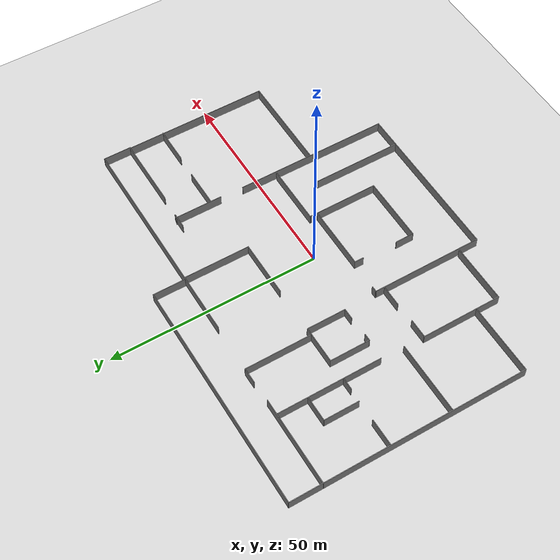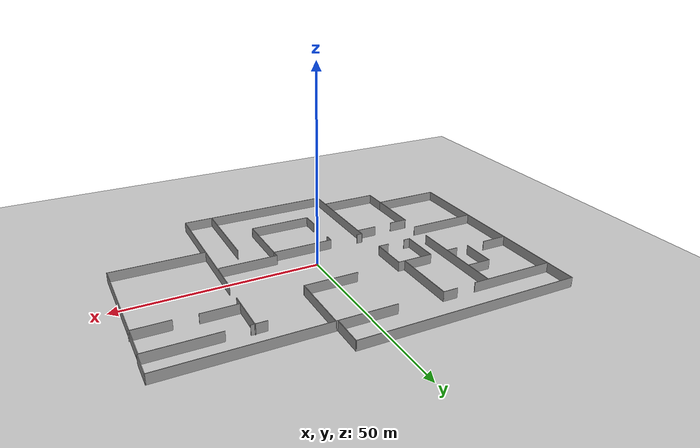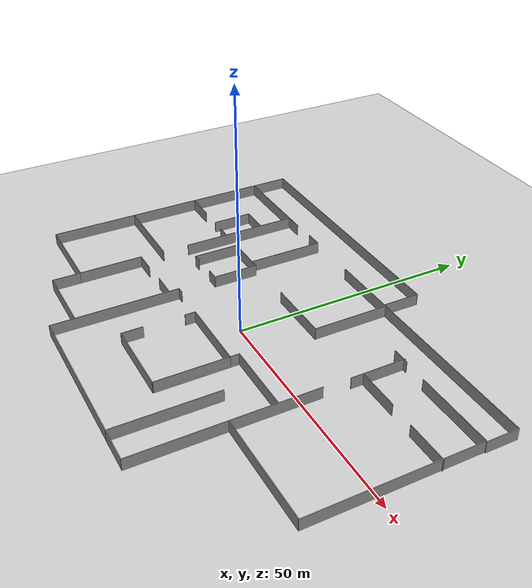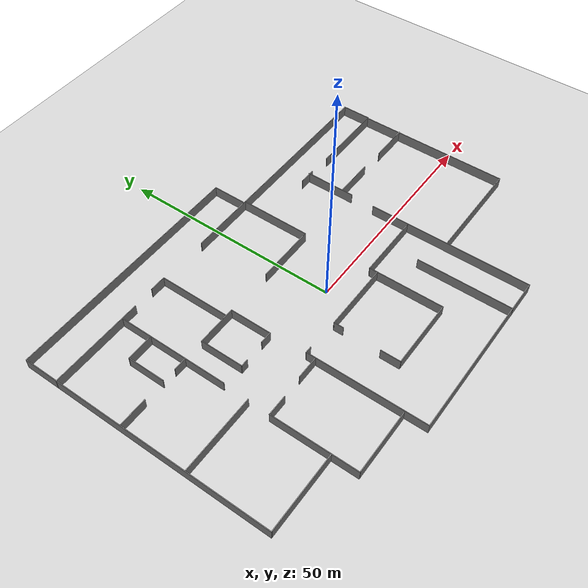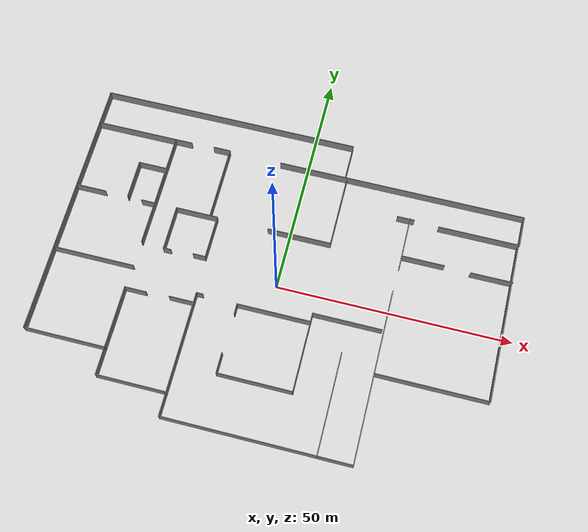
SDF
<sdf version="1.6">
 <world name="default">
  <light name="sun" type="directional">
   <pose>0 0 10 0 -0 0</pose>
   <diffuse>0.8 0.8 0.8 1</diffuse>
   <specular>0.2 0.2 0.2 1</specular>
   <attenuation>
    <range>1000</range>
    <constant>0.9</constant>
    <linear>0.01</linear>
    <quadratic>0.001</quadratic>
   </attenuation>
   <direction>-0.5 0.1 -0.9</direction>
  </light>
  <model name="ground_plane">
   <static>1</static>
   <link name="link">
    <collision name="collision">
     <geometry><plane><normal>0 0 1</normal><size>100 100</size></plane></geometry>
     <surface>
      <contact><collide_bitmask>65535</collide_bitmask></contact>
      <friction><ode><mu>100</mu><mu2>50</mu2></ode></friction>
     </surface>
    </collision>
    <visual name="visual">
     <cast_shadows>0</cast_shadows>
     <geometry><plane><normal>0 0 1</normal><size>100 100</size></plane></geometry>
     <material>
      <script><uri>file://media/materials/scripts/gazebo.material</uri><name>Gazebo/Grey</name></script>
     </material>
    </visual>
   </link>
  </model>
  <gravity>0 0 -9.8</gravity>
  <magnetic_field>6e-06 2.3e-05 -4.2e-05</magnetic_field>
  <atmosphere type="adiabatic"/>
  <physics name="default_physics" default="0" type="ode">
   <max_step_size>0.001</max_step_size>
   <real_time_factor>1</real_time_factor>
   <real_time_update_rate>1000</real_time_update_rate>
  </physics>
  <scene><ambient>0.4 0.4 0.4 1</ambient><background>0.7 0.7 0.7 1</background><shadows>1</shadows></scene>
  <audio><device>default</device></audio>
  <spherical_coordinates>
   <surface_model>EARTH_WGS84</surface_model>
   <latitude_deg>0</latitude_deg>
   <longitude_deg>0</longitude_deg>
   <elevation>0</elevation>
   <heading_deg>0</heading_deg>
  </spherical_coordinates>
  <model name="300x300">
   <pose>-0.030436 1.27229 0 0 -0 0</pose>
   <link name="Wall_0">
    <collision name="Wall_0_Collision">
     <geometry><box><size>21.5 0.15 2.5</size></box></geometry>
     <pose>0 0 1.25 0 -0 0</pose>
    </collision>
    <visual name="Wall_0_Visual">
     <pose>0 0 1.25 0 -0 0</pose>
     <geometry><box><size>21.5 0.15 2.5</size></box></geometry>
     <material>
      <script><uri>file://media/materials/scripts/gazebo.material</uri><name>Gazebo/Grey</name></script>
      <ambient>1 1 1 1</ambient>
     </material>
     <meta><layer>0</layer></meta>
    </visual>
    <pose>-37.0099 26.053 0 0 -0 3.14159</pose>
   </link>
   <link name="Wall_1">
    <collision name="Wall_1_Collision">
     <geometry><box><size>49.25 0.15 2.5</size></box></geometry>
     <pose>0 0 1.25 0 -0 0</pose>
    </collision>
    <visual name="Wall_1_Visual">
     <pose>0 0 1.25 0 -0 0</pose>
     <geometry><box><size>49.25 0.15 2.5</size></box></geometry>
     <material>
      <script><uri>file://media/materials/scripts/gazebo.material</uri><name>Gazebo/Grey</name></script>
      <ambient>1 1 1 1</ambient>
     </material>
     <meta><layer>0</layer></meta>
    </visual>
    <pose>-47.6849 1.50297 0 0 -0 -1.5708</pose>
   </link>
   <link name="Wall_11">
    <collision name="Wall_11_Collision">
     <geometry><box><size>37 0.15 2.5</size></box></geometry>
     <pose>0 0 1.25 0 -0 0</pose>
    </collision>
    <visual name="Wall_11_Visual">
     <pose>0 0 1.25 0 -0 0</pose>
     <geometry><box><size>37 0.15 2.5</size></box></geometry>
     <material>
      <script><uri>file://media/materials/scripts/gazebo.material</uri><name>Gazebo/Grey</name></script>
      <ambient>1 1 1 1</ambient>
     </material>
     <meta><layer>0</layer></meta>
    </visual>
    <pose>23.8809 -15.478 0 0 -0 1.5708</pose>
   </link>
   <link name="Wall_13">
    <collision name="Wall_13_Collision">
     <geometry><box><size>23.75 0.15 2.5</size></box></geometry>
     <pose>0 0 1.25 0 -0 0</pose>
    </collision>
    <visual name="Wall_13_Visual">
     <pose>0 0 1.25 0 -0 0</pose>
     <geometry><box><size>23.75 0.15 2.5</size></box></geometry>
     <material>
      <script><uri>file://media/materials/scripts/gazebo.material</uri><name>Gazebo/Grey</name></script>
      <ambient>1 1 1 1</ambient>
     </material>
     <meta><layer>0</layer></meta>
    </visual>
    <pose>35.6809 -15.072 0 0 -0 0</pose>
   </link>
   <link name="Wall_14">
    <collision name="Wall_14_Collision">
     <geometry><box><size>34.75 0.15 2.5</size></box></geometry>
     <pose>0 0 1.25 0 -0 0</pose>
    </collision>
    <visual name="Wall_14_Visual">
     <pose>0 0 1.25 0 -0 0</pose>
     <geometry><box><size>34.75 0.15 2.5</size></box></geometry>
     <material>
      <script><uri>file://media/materials/scripts/gazebo.material</uri><name>Gazebo/Grey</name></script>
      <ambient>1 1 1 1</ambient>
     </material>
     <meta><layer>0</layer></meta>
    </visual>
    <pose>47.4809 2.22796 0 0 -0 1.5708</pose>
   </link>
   <link name="Wall_15">
    <collision name="Wall_15_Collision">
     <geometry><box><size>17.25 0.15 2.5</size></box></geometry>
     <pose>0 0 1.25 0 -0 0</pose>
    </collision>
    <visual name="Wall_15_Visual">
     <pose>0 0 1.25 0 -0 0</pose>
     <geometry><box><size>17.25 0.15 2.5</size></box></geometry>
     <material>
      <script><uri>file://media/materials/scripts/gazebo.material</uri><name>Gazebo/Grey</name></script>
      <ambient>1 1 1 1</ambient>
     </material>
     <meta><layer>0</layer></meta>
    </visual>
    <pose>38.9309 19.528 0 0 -0 3.14159</pose>
   </link>
   <link name="Wall_17">
    <collision name="Wall_17_Collision">
     <geometry><box><size>3.75 0.15 2.5</size></box></geometry>
     <pose>0 0 1.25 0 -0 0</pose>
    </collision>
    <visual name="Wall_17_Visual">
     <pose>0 0 1.25 0 -0 0</pose>
     <geometry><box><size>3.75 0.15 2.5</size></box></geometry>
     <material>
      <script><uri>file://media/materials/scripts/gazebo.material</uri><name>Gazebo/Grey</name></script>
      <ambient>1 1 1 1</ambient>
     </material>
     <meta><layer>0</layer></meta>
    </visual>
    <pose>23.1631 19.776 0 0 -0 3.14159</pose>
   </link>
   <link name="Wall_19">
    <collision name="Wall_19_Collision">
     <geometry><box><size>11.5 0.15 2.5</size></box></geometry>
     <pose>0 0 1.25 0 -0 0</pose>
    </collision>
    <visual name="Wall_19_Visual">
     <pose>0 0 1.25 0 -0 0</pose>
     <geometry><box><size>11.5 0.15 2.5</size></box></geometry>
     <material>
      <script><uri>file://media/materials/scripts/gazebo.material</uri><name>Gazebo/Grey</name></script>
      <ambient>1 1 1 1</ambient>
     </material>
     <meta><layer>0</layer></meta>
    </visual>
    <pose>24.0973 14.3174 0 0 -0 -1.5708</pose>
   </link>
   <link name="Wall_2">
    <collision name="Wall_2_Collision">
     <geometry><box><size>17.5 0.15 2.5</size></box></geometry>
     <pose>0 0 1.25 0 -0 0</pose>
    </collision>
    <visual name="Wall_2_Visual">
     <pose>0 0 1.25 0 -0 0</pose>
     <geometry><box><size>17.5 0.15 2.5</size></box></geometry>
     <material>
      <script><uri>file://media/materials/scripts/gazebo.material</uri><name>Gazebo/Grey</name></script>
      <ambient>1 1 1 1</ambient>
     </material>
     <meta><layer>0</layer></meta>
    </visual>
    <pose>-39.0099 -23.047 0 0 -0 0</pose>
   </link>
   <link name="Wall_21">
    <collision name="Wall_21_Collision">
     <geometry><box><size>9 0.15 2.5</size></box></geometry>
     <pose>0 0 1.25 0 -0 0</pose>
    </collision>
    <visual name="Wall_21_Visual">
     <pose>0 0 1.25 0 -0 0</pose>
     <geometry><box><size>9 0.15 2.5</size></box></geometry>
     <material>
      <script><uri>file://media/materials/scripts/gazebo.material</uri><name>Gazebo/Grey</name></script>
      <ambient>1 1 1 1</ambient>
     </material>
     <meta><layer>0</layer></meta>
    </visual>
    <pose>28.7388 11.1181 0 0 -0 0</pose>
   </link>
   <link name="Wall_23">
    <collision name="Wall_23_Collision">
     <geometry><box><size>9 0.15 2.5</size></box></geometry>
     <pose>0 0 1.25 0 -0 0</pose>
    </collision>
    <visual name="Wall_23_Visual">
     <pose>0 0 1.25 0 -0 0</pose>
     <geometry><box><size>9 0.15 2.5</size></box></geometry>
     <material>
      <script><uri>file://media/materials/scripts/gazebo.material</uri><name>Gazebo/Grey</name></script>
      <ambient>1 1 1 1</ambient>
     </material>
     <meta><layer>0</layer></meta>
    </visual>
    <pose>43.2407 10.9017 0 0 -0 0</pose>
   </link>
   <link name="Wall_25">
    <collision name="Wall_25_Collision">
     <geometry><box><size>25 0.15 2.5</size></box></geometry>
     <pose>0 0 1.25 0 -0 0</pose>
    </collision>
    <visual name="Wall_25_Visual">
     <pose>0 0 1.25 0 -0 0</pose>
     <geometry><box><size>25 0.15 2.5</size></box></geometry>
     <material>
      <script><uri>file://media/materials/scripts/gazebo.material</uri><name>Gazebo/Grey</name></script>
      <ambient>1 1 1 1</ambient>
     </material>
     <meta><layer>0</layer></meta>
    </visual>
    <pose>-30.0145 13.4115 0 0 -0 -1.5708</pose>
   </link>
   <link name="Wall_27">
    <collision name="Wall_27_Collision">
     <geometry><box><size>6.25 0.15 2.5</size></box></geometry>
     <pose>0 0 1.25 0 -0 0</pose>
    </collision>
    <visual name="Wall_27_Visual">
     <pose>0 0 1.25 0 -0 0</pose>
     <geometry><box><size>6.25 0.15 2.5</size></box></geometry>
     <material>
      <script><uri>file://media/materials/scripts/gazebo.material</uri><name>Gazebo/Grey</name></script>
      <ambient>1 1 1 1</ambient>
     </material>
     <meta><layer>0</layer></meta>
    </visual>
    <pose>-33.0645 18.6938 0 0 -0 3.14159</pose>
   </link>
   <link name="Wall_28">
    <collision name="Wall_28_Collision">
     <geometry><box><size>8.5 0.15 2.5</size></box></geometry>
     <pose>0 0 1.25 0 -0 0</pose>
    </collision>
    <visual name="Wall_28_Visual">
     <pose>0 0 1.25 0 -0 0</pose>
     <geometry><box><size>8.5 0.15 2.5</size></box></geometry>
     <material>
      <script><uri>file://media/materials/scripts/gazebo.material</uri><name>Gazebo/Grey</name></script>
      <ambient>1 1 1 1</ambient>
     </material>
     <meta><layer>0</layer></meta>
    </visual>
    <pose>-36.1145 14.5188 0 0 -0 -1.5708</pose>
   </link>
   <link name="Wall_3">
    <collision name="Wall_3_Collision">
     <geometry><box><size>6 0.15 2.5</size></box></geometry>
     <pose>0 0 1.25 0 -0 0</pose>
    </collision>
    <visual name="Wall_3_Visual">
     <pose>0 0 1.25 0 -0 0</pose>
     <geometry><box><size>6 0.15 2.5</size></box></geometry>
     <material>
      <script><uri>file://media/materials/scripts/gazebo.material</uri><name>Gazebo/Grey</name></script>
      <ambient>1 1 1 1</ambient>
     </material>
     <meta><layer>0</layer></meta>
    </visual>
    <pose>-30.3349 -25.972 0 0 -0 -1.5708</pose>
   </link>
   <link name="Wall_31">
    <collision name="Wall_31_Collision">
     <geometry><box><size>6.5 0.15 2.5</size></box></geometry>
     <pose>0 0 1.25 0 -0 0</pose>
    </collision>
    <visual name="Wall_31_Visual">
     <pose>0 0 1.25 0 -0 0</pose>
     <geometry><box><size>6.5 0.15 2.5</size></box></geometry>
     <material>
      <script><uri>file://media/materials/scripts/gazebo.material</uri><name>Gazebo/Grey</name></script>
      <ambient>1 1 1 1</ambient>
     </material>
     <meta><layer>0</layer></meta>
    </visual>
    <pose>-44.3458 10.2748 0 0 -0 0</pose>
   </link>
   <link name="Wall_33">
    <collision name="Wall_33_Collision">
     <geometry><box><size>3 0.15 2.5</size></box></geometry>
     <pose>0 0 1.25 0 -0 0</pose>
    </collision>
    <visual name="Wall_33_Visual">
     <pose>0 0 1.25 0 -0 0</pose>
     <geometry><box><size>3 0.15 2.5</size></box></geometry>
     <material>
      <script><uri>file://media/materials/scripts/gazebo.material</uri><name>Gazebo/Grey</name></script>
      <ambient>1 1 1 1</ambient>
     </material>
     <meta><layer>0</layer></meta>
    </visual>
    <pose>-31.4964 10.1511 0 0 -0 3.14159</pose>
   </link>
   <link name="Wall_36">
    <collision name="Wall_36_Collision">
     <geometry><box><size>1.75 0.15 2.5</size></box></geometry>
     <pose>0 0 1.25 0 -0 0</pose>
    </collision>
    <visual name="Wall_36_Visual">
     <pose>0 0 1.25 0 -0 0</pose>
     <geometry><box><size>1.75 0.15 2.5</size></box></geometry>
     <material>
      <script><uri>file://media/materials/scripts/gazebo.material</uri><name>Gazebo/Grey</name></script>
      <ambient>1 1 1 1</ambient>
     </material>
     <meta><layer>0</layer></meta>
    </visual>
    <pose>-24.3124 0.621957 0 0 -0 3.14159</pose>
   </link>
   <link name="Wall_37">
    <collision name="Wall_37_Collision">
     <geometry><box><size>9.75 0.15 2.5</size></box></geometry>
     <pose>0 0 1.25 0 -0 0</pose>
    </collision>
    <visual name="Wall_37_Visual">
     <pose>0 0 1.25 0 -0 0</pose>
     <geometry><box><size>9.75 0.15 2.5</size></box></geometry>
     <material>
      <script><uri>file://media/materials/scripts/gazebo.material</uri><name>Gazebo/Grey</name></script>
      <ambient>1 1 1 1</ambient>
     </material>
     <meta><layer>0</layer></meta>
    </visual>
    <pose>-25.1124 5.42196 0 0 -0 1.5708</pose>
   </link>
   <link name="Wall_38">
    <collision name="Wall_38_Collision">
     <geometry><box><size>9.25 0.15 2.5</size></box></geometry>
     <pose>0 0 1.25 0 -0 0</pose>
    </collision>
    <visual name="Wall_38_Visual">
     <pose>0 0 1.25 0 -0 0</pose>
     <geometry><box><size>9.25 0.15 2.5</size></box></geometry>
     <material>
      <script><uri>file://media/materials/scripts/gazebo.material</uri><name>Gazebo/Grey</name></script>
      <ambient>1 1 1 1</ambient>
     </material>
     <meta><layer>0</layer></meta>
    </visual>
    <pose>-20.5624 10.222 0 0 -0 0</pose>
   </link>
   <link name="Wall_39">
    <collision name="Wall_39_Collision">
     <geometry><box><size>9.5 0.15 2.5</size></box></geometry>
     <pose>0 0 1.25 0 -0 0</pose>
    </collision>
    <visual name="Wall_39_Visual">
     <pose>0 0 1.25 0 -0 0</pose>
     <geometry><box><size>9.5 0.15 2.5</size></box></geometry>
     <material>
      <script><uri>file://media/materials/scripts/gazebo.material</uri><name>Gazebo/Grey</name></script>
      <ambient>1 1 1 1</ambient>
     </material>
     <meta><layer>0</layer></meta>
    </visual>
    <pose>-16.0124 5.54696 0 0 -0 -1.5708</pose>
   </link>
   <link name="Wall_4">
    <collision name="Wall_4_Collision">
     <geometry><box><size>14.5 0.15 2.5</size></box></geometry>
     <pose>0 0 1.25 0 -0 0</pose>
    </collision>
    <visual name="Wall_4_Visual">
     <pose>0 0 1.25 0 -0 0</pose>
     <geometry><box><size>14.5 0.15 2.5</size></box></geometry>
     <material>
      <script><uri>file://media/materials/scripts/gazebo.material</uri><name>Gazebo/Grey</name></script>
      <ambient>1 1 1 1</ambient>
     </material>
     <meta><layer>0</layer></meta>
    </visual>
    <pose>-23.1599 -28.897 0 0 -0 0</pose>
   </link>
   <link name="Wall_40">
    <collision name="Wall_40_Collision">
     <geometry><box><size>2.75 0.15 2.5</size></box></geometry>
     <pose>0 0 1.25 0 -0 0</pose>
    </collision>
    <visual name="Wall_40_Visual">
     <pose>0 0 1.25 0 -0 0</pose>
     <geometry><box><size>2.75 0.15 2.5</size></box></geometry>
     <material>
      <script><uri>file://media/materials/scripts/gazebo.material</uri><name>Gazebo/Grey</name></script>
      <ambient>1 1 1 1</ambient>
     </material>
     <meta><layer>0</layer></meta>
    </visual>
    <pose>-17.3124 0.871957 0 0 -0 3.14159</pose>
   </link>
   <link name="Wall_44">
    <collision name="Wall_44_Collision">
     <geometry><box><size>3.75 0.15 2.5</size></box></geometry>
     <pose>0 0 1.25 0 -0 0</pose>
    </collision>
    <visual name="Wall_44_Visual">
     <pose>0 0 1.25 0 -0 0</pose>
     <geometry><box><size>3.75 0.15 2.5</size></box></geometry>
     <material>
      <script><uri>file://media/materials/scripts/gazebo.material</uri><name>Gazebo/Grey</name></script>
      <ambient>1 1 1 1</ambient>
     </material>
     <meta><layer>0</layer></meta>
    </visual>
    <pose>-19.4605 26.2641 0 0 -0 0</pose>
   </link>
   <link name="Wall_45">
    <collision name="Wall_45_Collision">
     <geometry><box><size>16 0.15 2.5</size></box></geometry>
     <pose>0 0 1.25 0 -0 0</pose>
    </collision>
    <visual name="Wall_45_Visual">
     <pose>0 0 1.25 0 -0 0</pose>
     <geometry><box><size>16 0.15 2.5</size></box></geometry>
     <material>
      <script><uri>file://media/materials/scripts/gazebo.material</uri><name>Gazebo/Grey</name></script>
      <ambient>1 1 1 1</ambient>
     </material>
     <meta><layer>0</layer></meta>
    </visual>
    <pose>-17.6605 18.3391 0 0 -0 -1.5708</pose>
   </link>
   <link name="Wall_47">
    <collision name="Wall_47_Collision">
     <geometry><box><size>15 0.15 2.5</size></box></geometry>
     <pose>0 0 1.25 0 -0 0</pose>
    </collision>
    <visual name="Wall_47_Visual">
     <pose>0 0 1.25 0 -0 0</pose>
     <geometry><box><size>15 0.15 2.5</size></box></geometry>
     <material>
      <script><uri>file://media/materials/scripts/gazebo.material</uri><name>Gazebo/Grey</name></script>
      <ambient>1 1 1 1</ambient>
     </material>
     <meta><layer>0</layer></meta>
    </visual>
    <pose>1.40994 26.0759 0 0 -0 0</pose>
   </link>
   <link name="Wall_48">
    <collision name="Wall_48_Collision">
     <geometry><box><size>16 0.15 2.5</size></box></geometry>
     <pose>0 0 1.25 0 -0 0</pose>
    </collision>
    <visual name="Wall_48_Visual">
     <pose>0 0 1.25 0 -0 0</pose>
     <geometry><box><size>16 0.15 2.5</size></box></geometry>
     <material>
      <script><uri>file://media/materials/scripts/gazebo.material</uri><name>Gazebo/Grey</name></script>
      <ambient>1 1 1 1</ambient>
     </material>
     <meta><layer>0</layer></meta>
    </visual>
    <pose>8.83494 18.1509 0 0 -0 -1.5708</pose>
   </link>
   <link name="Wall_49">
    <collision name="Wall_49_Collision">
     <geometry><box><size>13.75 0.15 2.5</size></box></geometry>
     <pose>0 0 1.25 0 -0 0</pose>
    </collision>
    <visual name="Wall_49_Visual">
     <pose>0 0 1.25 0 -0 0</pose>
     <geometry><box><size>13.75 0.15 2.5</size></box></geometry>
     <material>
      <script><uri>file://media/materials/scripts/gazebo.material</uri><name>Gazebo/Grey</name></script>
      <ambient>1 1 1 1</ambient>
     </material>
     <meta><layer>0</layer></meta>
    </visual>
    <pose>2.03494 10.2259 0 0 -0 3.14159</pose>
   </link>
   <link name="Wall_55">
    <collision name="Wall_55_Collision">
     <geometry><box><size>15.75 0.15 2.5</size></box></geometry>
     <pose>0 0 1.25 0 -0 0</pose>
    </collision>
    <visual name="Wall_55_Visual">
     <pose>0 0 1.25 0 -0 0</pose>
     <geometry><box><size>15.75 0.15 2.5</size></box></geometry>
     <material>
      <script><uri>file://media/materials/scripts/gazebo.material</uri><name>Gazebo/Grey</name></script>
      <ambient>1 1 1 1</ambient>
     </material>
     <meta><layer>0</layer></meta>
    </visual>
    <pose>1.05394 -7.61462 0 0 -0 3.14159</pose>
   </link>
   <link name="Wall_56">
    <collision name="Wall_56_Collision">
     <geometry><box><size>2.25 0.15 2.5</size></box></geometry>
     <pose>0 0 1.25 0 -0 0</pose>
    </collision>
    <visual name="Wall_56_Visual">
     <pose>0 0 1.25 0 -0 0</pose>
     <geometry><box><size>2.25 0.15 2.5</size></box></geometry>
     <material>
      <script><uri>file://media/materials/scripts/gazebo.material</uri><name>Gazebo/Grey</name></script>
      <ambient>1 1 1 1</ambient>
     </material>
     <meta><layer>0</layer></meta>
    </visual>
    <pose>-6.74606 -8.66462 0 0 -0 -1.5708</pose>
   </link>
   <link name="Wall_58">
    <collision name="Wall_58_Collision">
     <geometry><box><size>4.5 0.15 2.5</size></box></geometry>
     <pose>0 0 1.25 0 -0 0</pose>
    </collision>
    <visual name="Wall_58_Visual">
     <pose>0 0 1.25 0 -0 0</pose>
     <geometry><box><size>4.5 0.15 2.5</size></box></geometry>
     <material>
      <script><uri>file://media/materials/scripts/gazebo.material</uri><name>Gazebo/Grey</name></script>
      <ambient>1 1 1 1</ambient>
     </material>
     <meta><layer>0</layer></meta>
    </visual>
    <pose>-6.95613 -20.5179 0 0 -0 -1.5708</pose>
   </link>
   <link name="Wall_59">
    <collision name="Wall_59_Collision">
     <geometry><box><size>16 0.15 2.5</size></box></geometry>
     <pose>0 0 1.25 0 -0 0</pose>
    </collision>
    <visual name="Wall_59_Visual">
     <pose>0 0 1.25 0 -0 0</pose>
     <geometry><box><size>16 0.15 2.5</size></box></geometry>
     <material>
      <script><uri>file://media/materials/scripts/gazebo.material</uri><name>Gazebo/Grey</name></script>
      <ambient>1 1 1 1</ambient>
     </material>
     <meta><layer>0</layer></meta>
    </visual>
    <pose>0.968867 -22.6929 0 0 -0 0</pose>
   </link>
   <link name="Wall_6">
    <collision name="Wall_6_Collision">
     <geometry><box><size>1.5 0.15 2.5</size></box></geometry>
     <pose>0 0 1.25 0 -0 0</pose>
    </collision>
    <visual name="Wall_6_Visual">
     <pose>0 0 1.25 0 -0 0</pose>
     <geometry><box><size>1.5 0.15 2.5</size></box></geometry>
     <material>
      <script><uri>file://media/materials/scripts/gazebo.material</uri><name>Gazebo/Grey</name></script>
      <ambient>1 1 1 1</ambient>
     </material>
     <meta><layer>0</layer></meta>
    </visual>
    <pose>-14.8889 -7.27994 0 0 -0 3.14159</pose>
   </link>
   <link name="Wall_60">
    <collision name="Wall_60_Collision">
     <geometry><box><size>15.2283 0.15 2.5</size></box></geometry>
     <pose>0 0 1.25 0 -0 0</pose>
    </collision>
    <visual name="Wall_60_Visual">
     <pose>0 0 1.25 0 -0 0</pose>
     <geometry><box><size>15.2283 0.15 2.5</size></box></geometry>
     <material>
      <script><uri>file://media/materials/scripts/gazebo.material</uri><name>Gazebo/Grey</name></script>
      <ambient>1 1 1 1</ambient>
     </material>
     <meta><layer>0</layer></meta>
    </visual>
    <pose>8.8739 -15.1538 0 0 -0 1.57344</pose>
   </link>
   <link name="Wall_61">
    <collision name="Wall_61_Collision">
     <geometry><box><size>2 0.15 2.5</size></box></geometry>
     <pose>0 0 1.25 0 -0 0</pose>
    </collision>
    <visual name="Wall_61_Visual">
     <pose>0 0 1.25 0 -0 0</pose>
     <geometry><box><size>2 0.15 2.5</size></box></geometry>
     <material>
      <script><uri>file://media/materials/scripts/gazebo.material</uri><name>Gazebo/Grey</name></script>
      <ambient>1 1 1 1</ambient>
     </material>
     <meta><layer>0</layer></meta>
    </visual>
    <pose>8.85394 -6.68962 0 0 -0 1.5708</pose>
   </link>
   <link name="Wall_62">
    <collision name="Wall_62_Collision">
     <geometry><box><size>14.75 0.15 2.5</size></box></geometry>
     <pose>0 0 1.25 0 -0 0</pose>
    </collision>
    <visual name="Wall_62_Visual">
     <pose>0 0 1.25 0 -0 0</pose>
     <geometry><box><size>14.75 0.15 2.5</size></box></geometry>
     <material>
      <script><uri>file://media/materials/scripts/gazebo.material</uri><name>Gazebo/Grey</name></script>
      <ambient>1 1 1 1</ambient>
     </material>
     <meta><layer>0</layer></meta>
    </visual>
    <pose>16.1539 -5.76462 0 0 -0 0</pose>
   </link>
   <link name="Wall_66">
    <collision name="Wall_66_Collision">
     <geometry><box><size>39 0.15 2.5</size></box></geometry>
     <pose>0 0 1.25 0 -0 0</pose>
    </collision>
    <visual name="Wall_66_Visual">
     <pose>0 0 1.25 0 -0 0</pose>
     <geometry><box><size>39 0.15 2.5</size></box></geometry>
     <material>
      <script><uri>file://media/materials/scripts/gazebo.material</uri><name>Gazebo/Grey</name></script>
      <ambient>1 1 1 1</ambient>
     </material>
     <meta><layer>0</layer></meta>
    </visual>
    <pose>28.2599 26.0759 0 0 -0 0</pose>
   </link>
   <link name="Wall_69">
    <collision name="Wall_69_Collision">
     <geometry><box><size>6.75 0.15 2.5</size></box></geometry>
     <pose>0 0 1.25 0 -0 0</pose>
    </collision>
    <visual name="Wall_69_Visual">
     <pose>0 0 1.25 0 -0 0</pose>
     <geometry><box><size>6.75 0.15 2.5</size></box></geometry>
     <material>
      <script><uri>file://media/materials/scripts/gazebo.material</uri><name>Gazebo/Grey</name></script>
      <ambient>1 1 1 1</ambient>
     </material>
     <meta><layer>0</layer></meta>
    </visual>
    <pose>47.6849 22.7759 0 0 -0 -1.5708</pose>
   </link>
   <link name="Wall_7">
    <collision name="Wall_7_Collision">
     <geometry><box><size>26.75 0.15 2.5</size></box></geometry>
     <pose>0 0 1.25 0 -0 0</pose>
    </collision>
    <visual name="Wall_7_Visual">
     <pose>0 0 1.25 0 -0 0</pose>
     <geometry><box><size>26.75 0.15 2.5</size></box></geometry>
     <material>
      <script><uri>file://media/materials/scripts/gazebo.material</uri><name>Gazebo/Grey</name></script>
      <ambient>1 1 1 1</ambient>
     </material>
     <meta><layer>0</layer></meta>
    </visual>
    <pose>-15.5639 -20.5799 0 0 -0 -1.5708</pose>
   </link>
   <link name="Wall_71">
    <collision name="Wall_71_Collision">
     <geometry><box><size>8 0.15 2.5</size></box></geometry>
     <pose>0 0 1.25 0 -0 0</pose>
    </collision>
    <visual name="Wall_71_Visual">
     <pose>0 0 1.25 0 -0 0</pose>
     <geometry><box><size>8 0.15 2.5</size></box></geometry>
     <material>
      <script><uri>file://media/materials/scripts/gazebo.material</uri><name>Gazebo/Grey</name></script>
      <ambient>1 1 1 1</ambient>
     </material>
     <meta><layer>0</layer></meta>
    </visual>
    <pose>-47.6849 29.978 0 0 -0 1.5708</pose>
   </link>
   <link name="Wall_72">
    <collision name="Wall_72_Collision">
     <geometry><box><size>56.25 0.15 2.5</size></box></geometry>
     <pose>0 0 1.25 0 -0 0</pose>
    </collision>
    <visual name="Wall_72_Visual">
     <pose>0 0 1.25 0 -0 0</pose>
     <geometry><box><size>56.25 0.15 2.5</size></box></geometry>
     <material>
      <script><uri>file://media/materials/scripts/gazebo.material</uri><name>Gazebo/Grey</name></script>
      <ambient>1 1 1 1</ambient>
     </material>
     <meta><layer>0</layer></meta>
    </visual>
    <pose>-19.6349 33.903 0 0 -0 0</pose>
   </link>
   <link name="Wall_74">
    <collision name="Wall_74_Collision">
     <geometry><box><size>7.75 0.15 2.5</size></box></geometry>
     <pose>0 0 1.25 0 -0 0</pose>
    </collision>
    <visual name="Wall_74_Visual">
     <pose>0 0 1.25 0 -0 0</pose>
     <geometry><box><size>7.75 0.15 2.5</size></box></geometry>
     <material>
      <script><uri>file://media/materials/scripts/gazebo.material</uri><name>Gazebo/Grey</name></script>
      <ambient>1 1 1 1</ambient>
     </material>
     <meta><layer>0</layer></meta>
    </visual>
    <pose>8.41506 30.103 0 0 -0 -1.5708</pose>
   </link>
   <link name="Wall_76">
    <collision name="Wall_76_Collision">
     <geometry><box><size>17.5 0.15 2.5</size></box></geometry>
     <pose>0 0 1.25 0 -0 0</pose>
    </collision>
    <visual name="Wall_76_Visual">
     <pose>0 0 1.25 0 -0 0</pose>
     <geometry><box><size>17.5 0.15 2.5</size></box></geometry>
     <material>
      <script><uri>file://media/materials/scripts/gazebo.material</uri><name>Gazebo/Grey</name></script>
      <ambient>1 1 1 1</ambient>
     </material>
     <meta><layer>0</layer></meta>
    </visual>
    <pose>-38.8069 -4.72799 0 0 -0 0</pose>
   </link>
   <link name="Wall_78">
    <collision name="Wall_78_Collision">
     <geometry><box><size>13.5 0.15 2.5</size></box></geometry>
     <pose>0 0 1.25 0 -0 0</pose>
    </collision>
    <visual name="Wall_78_Visual">
     <pose>0 0 1.25 0 -0 0</pose>
     <geometry><box><size>13.5 0.15 2.5</size></box></geometry>
     <material>
      <script><uri>file://media/materials/scripts/gazebo.material</uri><name>Gazebo/Grey</name></script>
      <ambient>1 1 1 1</ambient>
     </material>
     <meta><layer>0</layer></meta>
    </visual>
    <pose>-30.3349 -16.372 0 0 -0 1.5708</pose>
   </link>
   <link name="Wall_79">
    <collision name="Wall_79_Collision">
     <geometry><box><size>4.75 0.15 2.5</size></box></geometry>
     <pose>0 0 1.25 0 -0 0</pose>
    </collision>
    <visual name="Wall_79_Visual">
     <pose>0 0 1.25 0 -0 0</pose>
     <geometry><box><size>4.75 0.15 2.5</size></box></geometry>
     <material>
      <script><uri>file://media/materials/scripts/gazebo.material</uri><name>Gazebo/Grey</name></script>
      <ambient>1 1 1 1</ambient>
     </material>
     <meta><layer>0</layer></meta>
    </visual>
    <pose>-28.0349 -9.69703 0 0 -0 0</pose>
   </link>
   <link name="Wall_8">
    <collision name="Wall_8_Collision">
     <geometry><box><size>32.25 0.15 2.5</size></box></geometry>
     <pose>0 0 1.25 0 -0 0</pose>
    </collision>
    <visual name="Wall_8_Visual">
     <pose>0 0 1.25 0 -0 0</pose>
     <geometry><box><size>32.25 0.15 2.5</size></box></geometry>
     <material>
      <script><uri>file://media/materials/scripts/gazebo.material</uri><name>Gazebo/Grey</name></script>
      <ambient>1 1 1 1</ambient>
     </material>
     <meta><layer>0</layer></meta>
    </visual>
    <pose>0.486119 -33.8799 0 0 -0 0</pose>
   </link>
   <link name="Wall_81">
    <collision name="Wall_81_Collision">
     <geometry><box><size>5.25 0.15 2.5</size></box></geometry>
     <pose>0 0 1.25 0 -0 0</pose>
    </collision>
    <visual name="Wall_81_Visual">
     <pose>0 0 1.25 0 -0 0</pose>
     <geometry><box><size>5.25 0.15 2.5</size></box></geometry>
     <material>
      <script><uri>file://media/materials/scripts/gazebo.material</uri><name>Gazebo/Grey</name></script>
      <ambient>1 1 1 1</ambient>
     </material>
     <meta><layer>0</layer></meta>
    </visual>
    <pose>-18.2009 -9.43066 0 0 -0 0</pose>
   </link>
   <link name="Wall_83">
    <collision name="Wall_83_Collision">
     <geometry><box><size>7.25 0.15 2.5</size></box></geometry>
     <pose>0 0 1.25 0 -0 0</pose>
    </collision>
    <visual name="Wall_83_Visual">
     <pose>0 0 1.25 0 -0 0</pose>
     <geometry><box><size>7.25 0.15 2.5</size></box></geometry>
     <material>
      <script><uri>file://media/materials/scripts/gazebo.material</uri><name>Gazebo/Grey</name></script>
      <ambient>1 1 1 1</ambient>
     </material>
     <meta><layer>0</layer></meta>
    </visual>
    <pose>20.2775 -33.8935 0 0 -0 0</pose>
   </link>
   <link name="Wall_9">
    <collision name="Wall_9_Collision">
     <geometry><box><size>21.5 0.15 2.5</size></box></geometry>
     <pose>0 0 1.25 0 -0 0</pose>
    </collision>
    <visual name="Wall_9_Visual">
     <pose>0 0 1.25 0 -0 0</pose>
     <geometry><box><size>21.5 0.15 2.5</size></box></geometry>
     <material>
      <script><uri>file://media/materials/scripts/gazebo.material</uri><name>Gazebo/Grey</name></script>
      <ambient>1 1 1 1</ambient>
     </material>
     <meta><layer>0</layer></meta>
    </visual>
    <pose>16.5361 -23.2049 0 0 -0 1.5708</pose>
   </link>
   <static>1</static>
  </model>
  <plugin name="bot_factory" filename="./build/libbot_factory.so"/>
 </world>
</sdf>
